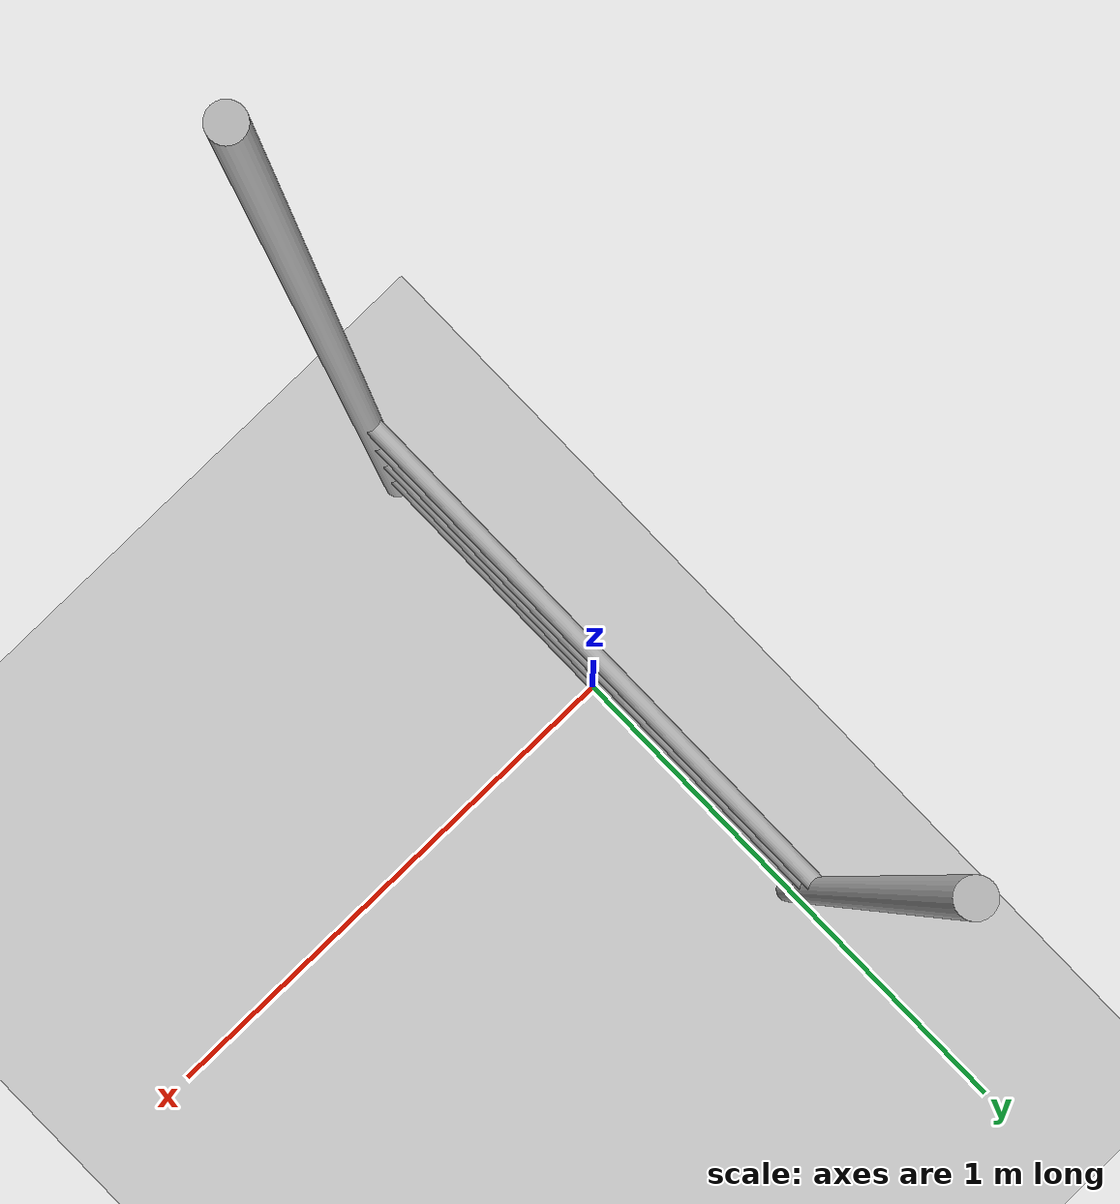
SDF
<sdf version="1.3">
 <world name="default">
  <scene><ambient>0.3 0.3 0.3 1.0</ambient></scene>
  <light type="directional" name="sun">
   <pose>0 0 100 0 0 0</pose>
   <diffuse>0.9 0.9 0.9 1</diffuse>
   <specular>0.1 0.1 0.1 1</specular>
   <attenuation>
    <range>1000</range>
    <constant>0.9</constant>
    <linear>0.01</linear>
    <quadratic>0.001</quadratic>
   </attenuation>
   <direction>-0.2 0.0 -1.0</direction>
  </light>
  <light type="point" name="light_bulb">
   <cast_shadows>false</cast_shadows>
   <pose>7.5 -7 5 0 0 0</pose>
   <diffuse>0.5 0.5 0.5 1</diffuse>
   <specular>0.0 0.0 0.0 1</specular>
   <attenuation>
    <range>80</range>
    <constant>0.9</constant>
    <linear>0.01</linear>
    <quadratic>0.001</quadratic>
   </attenuation>
  </light>
  <include><uri>model://ground_plane</uri></include>
  <include><uri>model://ladder</uri></include>
 </world>
</sdf>

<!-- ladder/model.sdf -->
<sdf version="1.3">
  <model name="ladder">
    <pose>0 0 0 0 0 0</pose>
    <static>true</static>
    <link name="link">

      <collision name="right_upright_collision">
        <pose>0 0.5 2.0 0 0 0 </pose>
        <geometry>
          <cylinder>
            <radius>0.022</radius>
            <length>4.0</length>
          </cylinder>
        </geometry>
      </collision>

      <visual name="right_upright_visual">
        <pose>0 0.5 2.0 0 0 0 </pose>
        <geometry>
          <cylinder>
            <radius>0.022</radius>
            <length>4.0</length>
          </cylinder>
        </geometry>
      </visual>

      <collision name="left_upright_collision">
        <pose>0 -0.5 2.0 0 0 0 </pose>
        <geometry>
          <cylinder>
            <radius>0.022</radius>
            <length>4.0</length>
          </cylinder>
        </geometry>
      </collision>

      <visual name="left_upright_visual">
        <pose>0 -0.5 2.0 0 0 0 </pose>
        <geometry>
          <cylinder>
            <radius>0.022</radius>
            <length>4.0</length>
          </cylinder>
        </geometry>
      </visual>

      <collision name="rung_1_collision">
        <pose>0 0 0.3 1.5707 0 0 </pose>
        <geometry>
          <cylinder>
            <radius>0.015</radius>
            <length>1.0</length>
          </cylinder>
        </geometry>
      </collision>

      <visual name="rung_1_visual">
        <pose>0 0 0.3 1.5707 0 0 </pose>
        <geometry>
          <cylinder>
            <radius>0.015</radius>
            <length>1.0</length>
          </cylinder>
        </geometry>
      </visual>

      <collision name="rung_2_collision">
        <pose>0 0 0.6 1.5707 0 0 </pose>
        <geometry>
          <cylinder>
            <radius>0.015</radius>
            <length>1.0</length>
          </cylinder>
        </geometry>
      </collision>

      <visual name="rung_2_visual">
        <pose>0 0 0.6 1.5707 0 0 </pose>
        <geometry>
          <cylinder>
            <radius>0.015</radius>
            <length>1.0</length>
          </cylinder>
        </geometry>
      </visual>

      <collision name="rung_3_collision">
        <pose>0 0 0.9 1.5707 0 0 </pose>
        <geometry>
          <cylinder>
            <radius>0.015</radius>
            <length>1.0</length>
          </cylinder>
        </geometry>
      </collision>

      <visual name="rung_3_visual">
        <pose>0 0 0.9 1.5707 0 0 </pose>
        <geometry>
          <cylinder>
            <radius>0.015</radius>
            <length>1.0</length>
          </cylinder>
        </geometry>
      </visual>

      <collision name="rung_4_collision">
        <pose>0 0 1.2 1.5707 0 0 </pose>
        <geometry>
          <cylinder>
            <radius>0.015</radius>
            <length>1.0</length>
          </cylinder>
        </geometry>
      </collision>

      <visual name="rung_4_visual">
        <pose>0 0 1.2 1.5707 0 0 </pose>
        <geometry>
          <cylinder>
            <radius>0.015</radius>
            <length>1.0</length>
          </cylinder>
        </geometry>
      </visual>

    </link>
  </model>
</sdf>
